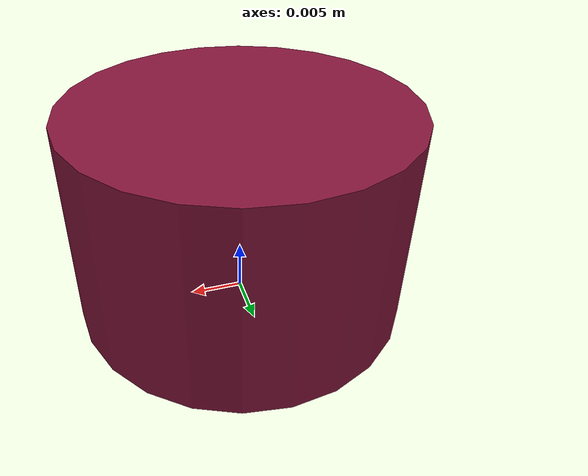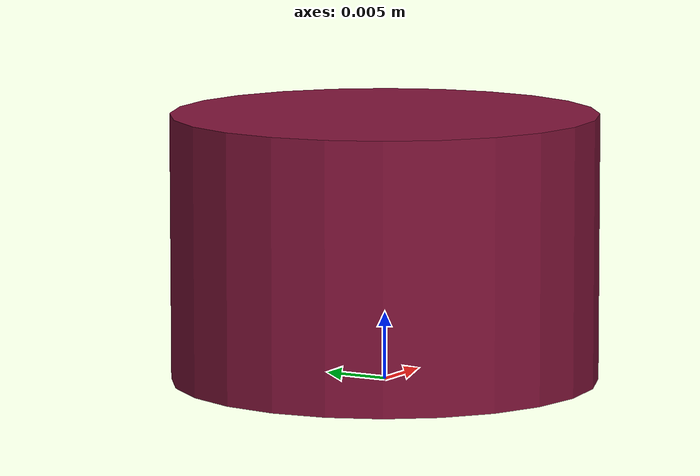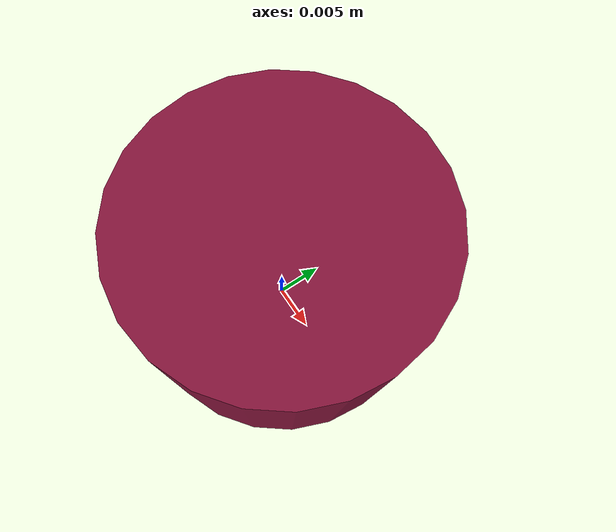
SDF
<sdf version="1.7">
  <model name="disc_16">
    <link name="base_link">
      <inertial>
        <mass>0.05</mass>
        <inertia>
          <ixx>7.91e-06</ixx>
          <ixy>0</ixy>
          <ixz>0</ixz>
          <iyy>7.91e-06</iyy>
          <iyz>0</iyz>
          <izz>1.56e-05</izz>
        </inertia>
        <pose>0 0 0.0025 0 0 0</pose>
      </inertial>
      <pose>0 0 0 0 0 0</pose>
      <visual name="visual">
        <pose>0 0 0.01 0 0 0</pose>
        <geometry>
            <cylinder>
              <radius>0.016</radius>
              <length>0.02</length>
            </cylinder>
        </geometry>
        <material>
          <diffuse>0.5181826457565153 0.08009054928661796 0.23063946400581237 1</diffuse>
        </material>
      </visual>
      <collision name="collision">
        <pose>0 0 0.01 0 0 0</pose>
        <geometry>
            <cylinder>
              <radius>0.016</radius>
              <length>0.02</length>
            </cylinder>
        </geometry>
      </collision>
      <collision name="ball1">
        <pose>0.01131370849898476 0.01131370849898476 0 0 0 0</pose>
        <geometry>
          <sphere>
            <radius>1e-07</radius>
          </sphere>
        </geometry>
      </collision>
      <collision name="ball2">
        <pose>-0.01131370849898476 0.01131370849898476 0 0 0 0</pose>
        <geometry>
          <sphere>
            <radius>1e-07</radius>
          </sphere>
        </geometry>
      </collision>
      <collision name="ball3">
        <pose>0.01131370849898476 -0.01131370849898476 0 0 0 0</pose>
        <geometry>
          <sphere>
            <radius>1e-07</radius>
          </sphere>
        </geometry>
      </collision>
      <collision name="ball4">
        <pose>-0.01131370849898476 -0.01131370849898476 0 0 0 0</pose>
        <geometry>
          <sphere>
            <radius>1e-07</radius>
          </sphere>
        </geometry>
      </collision>
    </link>
  </model>
</sdf>
